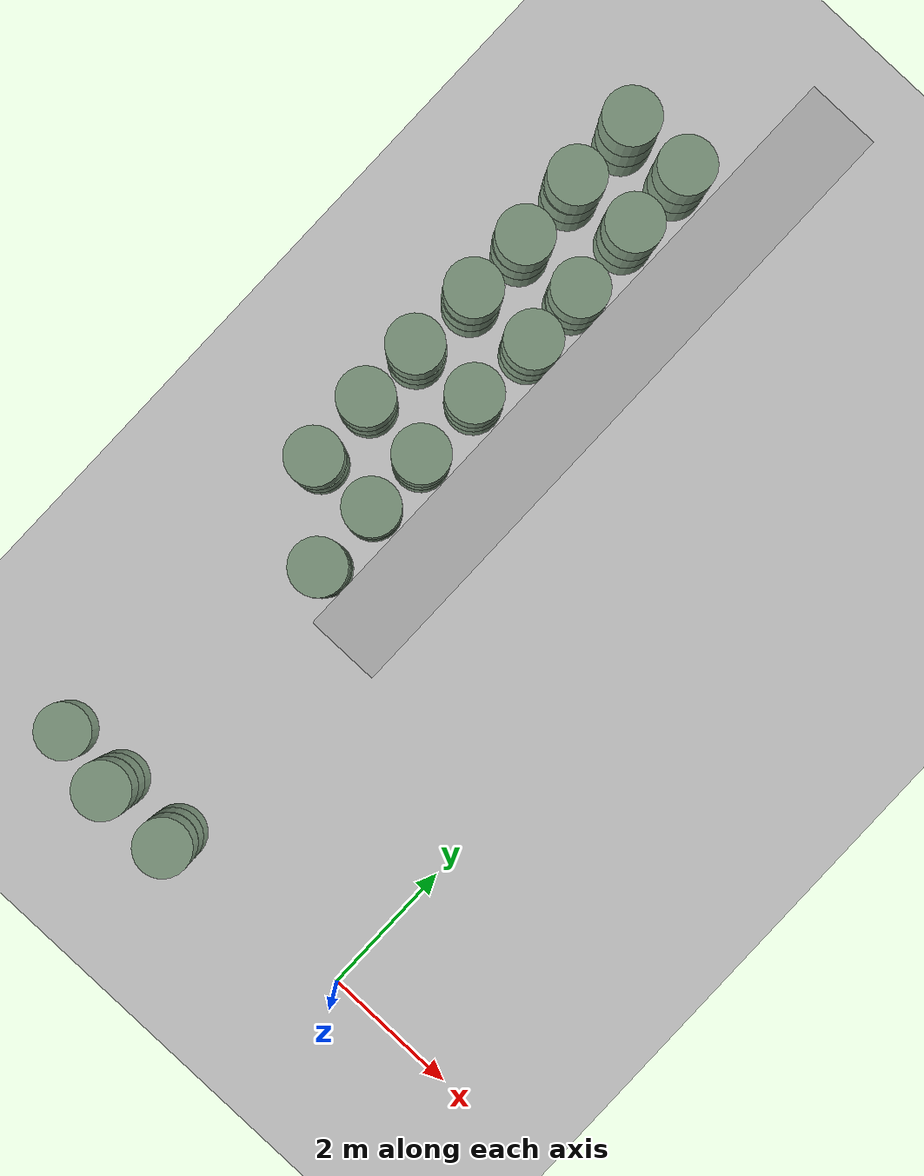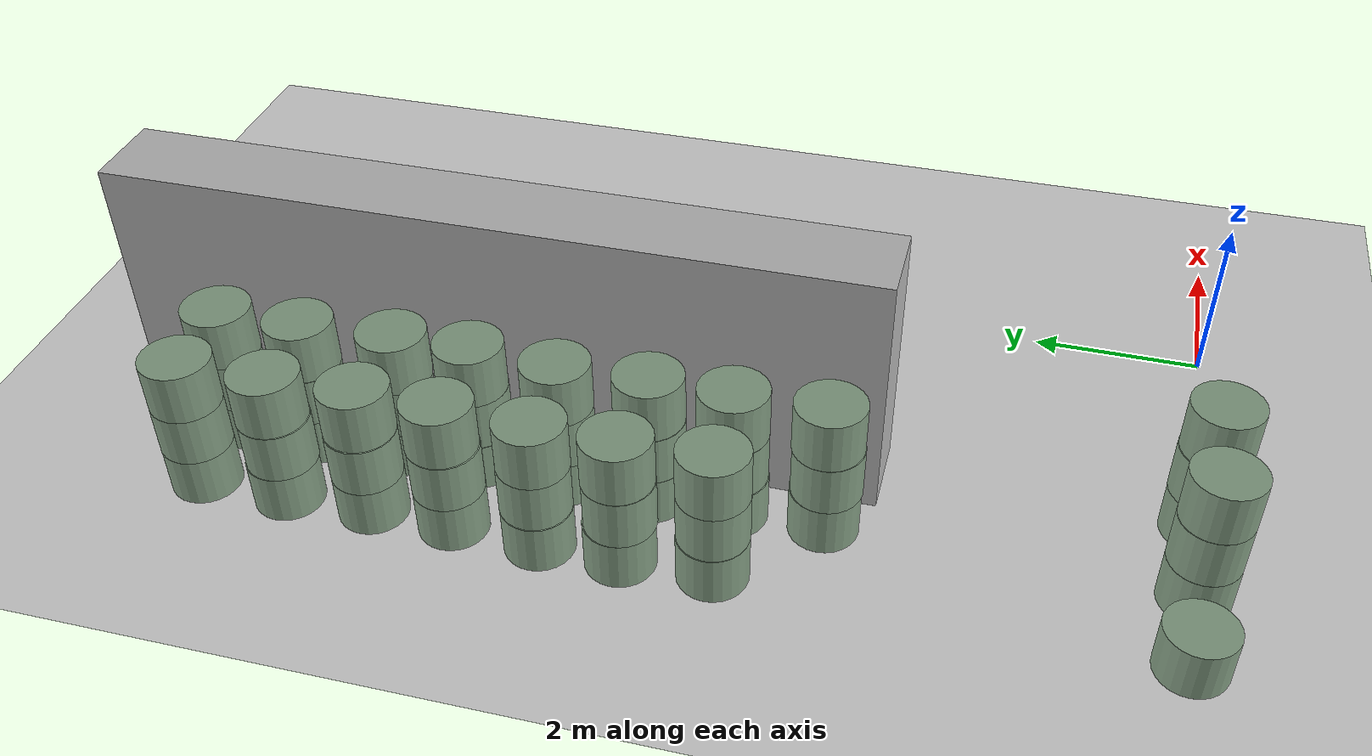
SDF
<sdf version="1.6">
 <world name="default">
  <include><uri>model://ground_plane</uri></include>
  <model name="wall_3">
   <pose>-3.0 8.0 1.5 0 -0 0</pose>
   <static>True</static>
   <link name="link">
    <inertial>
     <mass>100</mass>
     <inertia>
      <ixx>0.166667</ixx>
      <ixy>0</ixy>
      <ixz>0</ixz>
      <iyy>0.166667</iyy>
      <iyz>0</iyz>
      <izz>0.166667</izz>
     </inertia>
    </inertial>
    <collision name="collision"><geometry><box><size>1.0 9.0 3.0</size></box></geometry></collision>
    <visual name="visual">
     <geometry><box><size>1.0 9.0 3.0</size></box></geometry>
     <material><ambient>0.7 0.7 0.7 1</ambient><diffuse>0.7 0.7 0.7 1</diffuse></material>
    </visual>
   </link>
  </model>
  <model name="unit_cylinder_69">
   <pose>-5.03782356182 0.0265720674169 0.3 0 -0 0</pose>
   <static>True</static>
   <link name="link">
    <inertial>
     <mass>100</mass>
     <inertia><ixx>0.145833</ixx><ixy>0</ixy><ixz>0</ixz><iyy>0.145833</iyy><iyz>0</iyz><izz>0.125</izz></inertia>
    </inertial>
    <collision name="collision">
     <geometry><cylinder><radius>0.4</radius><length>0.6</length></cylinder></geometry>
     <max_contacts>100</max_contacts>
    </collision>
    <visual name="visual">
     <geometry><cylinder><radius>0.4</radius><length>0.6</length></cylinder></geometry>
     <material><ambient>0.5 0.6 0.5 1</ambient><diffuse>0.5 0.6 0.5 1</diffuse></material>
    </visual>
   </link>
  </model>
  <model name="unit_cylinder_72">
   <pose>-4.99059347366 5.02342648411 0.3 0 -0 0</pose>
   <static>True</static>
   <link name="link">
    <inertial>
     <mass>100</mass>
     <inertia><ixx>0.145833</ixx><ixy>0</ixy><ixz>0</ixz><iyy>0.145833</iyy><iyz>0</iyz><izz>0.125</izz></inertia>
    </inertial>
    <collision name="collision">
     <geometry><cylinder><radius>0.4</radius><length>0.6</length></cylinder></geometry>
     <max_contacts>100</max_contacts>
    </collision>
    <visual name="visual">
     <geometry><cylinder><radius>0.4</radius><length>0.6</length></cylinder></geometry>
     <material><ambient>0.5 0.6 0.5 1</ambient><diffuse>0.5 0.6 0.5 1</diffuse></material>
    </visual>
   </link>
  </model>
  <model name="unit_cylinder_73">
   <pose>-4.9800218774 5.02204412601 0.9 0 -0 0</pose>
   <static>True</static>
   <link name="link">
    <inertial>
     <mass>100</mass>
     <inertia><ixx>0.145833</ixx><ixy>0</ixy><ixz>0</ixz><iyy>0.145833</iyy><iyz>0</iyz><izz>0.125</izz></inertia>
    </inertial>
    <collision name="collision">
     <geometry><cylinder><radius>0.4</radius><length>0.6</length></cylinder></geometry>
     <max_contacts>100</max_contacts>
    </collision>
    <visual name="visual">
     <geometry><cylinder><radius>0.4</radius><length>0.6</length></cylinder></geometry>
     <material><ambient>0.5 0.6 0.5 1</ambient><diffuse>0.5 0.6 0.5 1</diffuse></material>
    </visual>
   </link>
  </model>
  <model name="unit_cylinder_74">
   <pose>-4.99481011272 5.01937620264 1.5 0 -0 0</pose>
   <static>True</static>
   <link name="link">
    <inertial>
     <mass>100</mass>
     <inertia><ixx>0.145833</ixx><ixy>0</ixy><ixz>0</ixz><iyy>0.145833</iyy><iyz>0</iyz><izz>0.125</izz></inertia>
    </inertial>
    <collision name="collision">
     <geometry><cylinder><radius>0.4</radius><length>0.6</length></cylinder></geometry>
     <max_contacts>100</max_contacts>
    </collision>
    <visual name="visual">
     <geometry><cylinder><radius>0.4</radius><length>0.6</length></cylinder></geometry>
     <material><ambient>0.5 0.6 0.5 1</ambient><diffuse>0.5 0.6 0.5 1</diffuse></material>
    </visual>
   </link>
  </model>
  <model name="unit_cylinder_75">
   <pose>-5.03156169588 6.04129613353 0.3 0 -0 0</pose>
   <static>True</static>
   <link name="link">
    <inertial>
     <mass>100</mass>
     <inertia><ixx>0.145833</ixx><ixy>0</ixy><ixz>0</ixz><iyy>0.145833</iyy><iyz>0</iyz><izz>0.125</izz></inertia>
    </inertial>
    <collision name="collision">
     <geometry><cylinder><radius>0.4</radius><length>0.6</length></cylinder></geometry>
     <max_contacts>100</max_contacts>
    </collision>
    <visual name="visual">
     <geometry><cylinder><radius>0.4</radius><length>0.6</length></cylinder></geometry>
     <material><ambient>0.5 0.6 0.5 1</ambient><diffuse>0.5 0.6 0.5 1</diffuse></material>
    </visual>
   </link>
  </model>
  <model name="unit_cylinder_76">
   <pose>-5.02912114826 6.02648568183 0.9 0 -0 0</pose>
   <static>True</static>
   <link name="link">
    <inertial>
     <mass>100</mass>
     <inertia><ixx>0.145833</ixx><ixy>0</ixy><ixz>0</ixz><iyy>0.145833</iyy><iyz>0</iyz><izz>0.125</izz></inertia>
    </inertial>
    <collision name="collision">
     <geometry><cylinder><radius>0.4</radius><length>0.6</length></cylinder></geometry>
     <max_contacts>100</max_contacts>
    </collision>
    <visual name="visual">
     <geometry><cylinder><radius>0.4</radius><length>0.6</length></cylinder></geometry>
     <material><ambient>0.5 0.6 0.5 1</ambient><diffuse>0.5 0.6 0.5 1</diffuse></material>
    </visual>
   </link>
  </model>
  <model name="unit_cylinder_77">
   <pose>-5.02596478025 6.0350380343 1.5 0 -0 0</pose>
   <static>True</static>
   <link name="link">
    <inertial>
     <mass>100</mass>
     <inertia><ixx>0.145833</ixx><ixy>0</ixy><ixz>0</ixz><iyy>0.145833</iyy><iyz>0</iyz><izz>0.125</izz></inertia>
    </inertial>
    <collision name="collision">
     <geometry><cylinder><radius>0.4</radius><length>0.6</length></cylinder></geometry>
     <max_contacts>100</max_contacts>
    </collision>
    <visual name="visual">
     <geometry><cylinder><radius>0.4</radius><length>0.6</length></cylinder></geometry>
     <material><ambient>0.5 0.6 0.5 1</ambient><diffuse>0.5 0.6 0.5 1</diffuse></material>
    </visual>
   </link>
  </model>
  <model name="unit_cylinder_78">
   <pose>-5.02283132991 6.96701352956 0.3 0 -0 0</pose>
   <static>True</static>
   <link name="link">
    <inertial>
     <mass>100</mass>
     <inertia><ixx>0.145833</ixx><ixy>0</ixy><ixz>0</ixz><iyy>0.145833</iyy><iyz>0</iyz><izz>0.125</izz></inertia>
    </inertial>
    <collision name="collision">
     <geometry><cylinder><radius>0.4</radius><length>0.6</length></cylinder></geometry>
     <max_contacts>100</max_contacts>
    </collision>
    <visual name="visual">
     <geometry><cylinder><radius>0.4</radius><length>0.6</length></cylinder></geometry>
     <material><ambient>0.5 0.6 0.5 1</ambient><diffuse>0.5 0.6 0.5 1</diffuse></material>
    </visual>
   </link>
  </model>
  <model name="unit_cylinder_79">
   <pose>-5.01076531523 6.97574725517 0.9 0 -0 0</pose>
   <static>True</static>
   <link name="link">
    <inertial>
     <mass>100</mass>
     <inertia><ixx>0.145833</ixx><ixy>0</ixy><ixz>0</ixz><iyy>0.145833</iyy><iyz>0</iyz><izz>0.125</izz></inertia>
    </inertial>
    <collision name="collision">
     <geometry><cylinder><radius>0.4</radius><length>0.6</length></cylinder></geometry>
     <max_contacts>100</max_contacts>
    </collision>
    <visual name="visual">
     <geometry><cylinder><radius>0.4</radius><length>0.6</length></cylinder></geometry>
     <material><ambient>0.5 0.6 0.5 1</ambient><diffuse>0.5 0.6 0.5 1</diffuse></material>
    </visual>
   </link>
  </model>
  <model name="unit_cylinder_80">
   <pose>-5.02451614811 6.96372885897 1.5 0 -0 0</pose>
   <static>True</static>
   <link name="link">
    <inertial>
     <mass>100</mass>
     <inertia><ixx>0.145833</ixx><ixy>0</ixy><ixz>0</ixz><iyy>0.145833</iyy><iyz>0</iyz><izz>0.125</izz></inertia>
    </inertial>
    <collision name="collision">
     <geometry><cylinder><radius>0.4</radius><length>0.6</length></cylinder></geometry>
     <max_contacts>100</max_contacts>
    </collision>
    <visual name="visual">
     <geometry><cylinder><radius>0.4</radius><length>0.6</length></cylinder></geometry>
     <material><ambient>0.5 0.6 0.5 1</ambient><diffuse>0.5 0.6 0.5 1</diffuse></material>
    </visual>
   </link>
  </model>
  <model name="unit_cylinder_81">
   <pose>-4.97088629709 7.99265066185 0.3 0 -0 0</pose>
   <static>True</static>
   <link name="link">
    <inertial>
     <mass>100</mass>
     <inertia><ixx>0.145833</ixx><ixy>0</ixy><ixz>0</ixz><iyy>0.145833</iyy><iyz>0</iyz><izz>0.125</izz></inertia>
    </inertial>
    <collision name="collision">
     <geometry><cylinder><radius>0.4</radius><length>0.6</length></cylinder></geometry>
     <max_contacts>100</max_contacts>
    </collision>
    <visual name="visual">
     <geometry><cylinder><radius>0.4</radius><length>0.6</length></cylinder></geometry>
     <material><ambient>0.5 0.6 0.5 1</ambient><diffuse>0.5 0.6 0.5 1</diffuse></material>
    </visual>
   </link>
  </model>
  <model name="unit_cylinder_82">
   <pose>-4.9767159432 7.99118023521 0.9 0 -0 0</pose>
   <static>True</static>
   <link name="link">
    <inertial>
     <mass>100</mass>
     <inertia><ixx>0.145833</ixx><ixy>0</ixy><ixz>0</ixz><iyy>0.145833</iyy><iyz>0</iyz><izz>0.125</izz></inertia>
    </inertial>
    <collision name="collision">
     <geometry><cylinder><radius>0.4</radius><length>0.6</length></cylinder></geometry>
     <max_contacts>100</max_contacts>
    </collision>
    <visual name="visual">
     <geometry><cylinder><radius>0.4</radius><length>0.6</length></cylinder></geometry>
     <material><ambient>0.5 0.6 0.5 1</ambient><diffuse>0.5 0.6 0.5 1</diffuse></material>
    </visual>
   </link>
  </model>
  <model name="unit_cylinder_83">
   <pose>-4.96775309749 8.00660761377 1.5 0 -0 0</pose>
   <static>True</static>
   <link name="link">
    <inertial>
     <mass>100</mass>
     <inertia><ixx>0.145833</ixx><ixy>0</ixy><ixz>0</ixz><iyy>0.145833</iyy><iyz>0</iyz><izz>0.125</izz></inertia>
    </inertial>
    <collision name="collision">
     <geometry><cylinder><radius>0.4</radius><length>0.6</length></cylinder></geometry>
     <max_contacts>100</max_contacts>
    </collision>
    <visual name="visual">
     <geometry><cylinder><radius>0.4</radius><length>0.6</length></cylinder></geometry>
     <material><ambient>0.5 0.6 0.5 1</ambient><diffuse>0.5 0.6 0.5 1</diffuse></material>
    </visual>
   </link>
  </model>
  <model name="unit_cylinder_84">
   <pose>-4.95965549614 8.95563117918 0.3 0 -0 0</pose>
   <static>True</static>
   <link name="link">
    <inertial>
     <mass>100</mass>
     <inertia><ixx>0.145833</ixx><ixy>0</ixy><ixz>0</ixz><iyy>0.145833</iyy><iyz>0</iyz><izz>0.125</izz></inertia>
    </inertial>
    <collision name="collision">
     <geometry><cylinder><radius>0.4</radius><length>0.6</length></cylinder></geometry>
     <max_contacts>100</max_contacts>
    </collision>
    <visual name="visual">
     <geometry><cylinder><radius>0.4</radius><length>0.6</length></cylinder></geometry>
     <material><ambient>0.5 0.6 0.5 1</ambient><diffuse>0.5 0.6 0.5 1</diffuse></material>
    </visual>
   </link>
  </model>
  <model name="unit_cylinder_85">
   <pose>-4.9655779702 8.95316364308 0.9 0 -0 0</pose>
   <static>True</static>
   <link name="link">
    <inertial>
     <mass>100</mass>
     <inertia><ixx>0.145833</ixx><ixy>0</ixy><ixz>0</ixz><iyy>0.145833</iyy><iyz>0</iyz><izz>0.125</izz></inertia>
    </inertial>
    <collision name="collision">
     <geometry><cylinder><radius>0.4</radius><length>0.6</length></cylinder></geometry>
     <max_contacts>100</max_contacts>
    </collision>
    <visual name="visual">
     <geometry><cylinder><radius>0.4</radius><length>0.6</length></cylinder></geometry>
     <material><ambient>0.5 0.6 0.5 1</ambient><diffuse>0.5 0.6 0.5 1</diffuse></material>
    </visual>
   </link>
  </model>
  <model name="unit_cylinder_86">
   <pose>-4.94890587693 8.95917958067 1.5 0 -0 0</pose>
   <static>True</static>
   <link name="link">
    <inertial>
     <mass>100</mass>
     <inertia><ixx>0.145833</ixx><ixy>0</ixy><ixz>0</ixz><iyy>0.145833</iyy><iyz>0</iyz><izz>0.125</izz></inertia>
    </inertial>
    <collision name="collision">
     <geometry><cylinder><radius>0.4</radius><length>0.6</length></cylinder></geometry>
     <max_contacts>100</max_contacts>
    </collision>
    <visual name="visual">
     <geometry><cylinder><radius>0.4</radius><length>0.6</length></cylinder></geometry>
     <material><ambient>0.5 0.6 0.5 1</ambient><diffuse>0.5 0.6 0.5 1</diffuse></material>
    </visual>
   </link>
  </model>
  <model name="unit_cylinder_87">
   <pose>-4.99435192944 9.968948391 0.3 0 -0 0</pose>
   <static>True</static>
   <link name="link">
    <inertial>
     <mass>100</mass>
     <inertia><ixx>0.145833</ixx><ixy>0</ixy><ixz>0</ixz><iyy>0.145833</iyy><iyz>0</iyz><izz>0.125</izz></inertia>
    </inertial>
    <collision name="collision">
     <geometry><cylinder><radius>0.4</radius><length>0.6</length></cylinder></geometry>
     <max_contacts>100</max_contacts>
    </collision>
    <visual name="visual">
     <geometry><cylinder><radius>0.4</radius><length>0.6</length></cylinder></geometry>
     <material><ambient>0.5 0.6 0.5 1</ambient><diffuse>0.5 0.6 0.5 1</diffuse></material>
    </visual>
   </link>
  </model>
  <model name="unit_cylinder_88">
   <pose>-4.99159879973 9.95883391727 0.9 0 -0 0</pose>
   <static>True</static>
   <link name="link">
    <inertial>
     <mass>100</mass>
     <inertia><ixx>0.145833</ixx><ixy>0</ixy><ixz>0</ixz><iyy>0.145833</iyy><iyz>0</iyz><izz>0.125</izz></inertia>
    </inertial>
    <collision name="collision">
     <geometry><cylinder><radius>0.4</radius><length>0.6</length></cylinder></geometry>
     <max_contacts>100</max_contacts>
    </collision>
    <visual name="visual">
     <geometry><cylinder><radius>0.4</radius><length>0.6</length></cylinder></geometry>
     <material><ambient>0.5 0.6 0.5 1</ambient><diffuse>0.5 0.6 0.5 1</diffuse></material>
    </visual>
   </link>
  </model>
  <model name="unit_cylinder_89">
   <pose>-4.98437458421 9.9741676871 1.5 0 -0 0</pose>
   <static>True</static>
   <link name="link">
    <inertial>
     <mass>100</mass>
     <inertia><ixx>0.145833</ixx><ixy>0</ixy><ixz>0</ixz><iyy>0.145833</iyy><iyz>0</iyz><izz>0.125</izz></inertia>
    </inertial>
    <collision name="collision">
     <geometry><cylinder><radius>0.4</radius><length>0.6</length></cylinder></geometry>
     <max_contacts>100</max_contacts>
    </collision>
    <visual name="visual">
     <geometry><cylinder><radius>0.4</radius><length>0.6</length></cylinder></geometry>
     <material><ambient>0.5 0.6 0.5 1</ambient><diffuse>0.5 0.6 0.5 1</diffuse></material>
    </visual>
   </link>
  </model>
  <model name="unit_cylinder_90">
   <pose>-4.97650855605 11.018045595 0.3 0 -0 0</pose>
   <static>True</static>
   <link name="link">
    <inertial>
     <mass>100</mass>
     <inertia><ixx>0.145833</ixx><ixy>0</ixy><ixz>0</ixz><iyy>0.145833</iyy><iyz>0</iyz><izz>0.125</izz></inertia>
    </inertial>
    <collision name="collision">
     <geometry><cylinder><radius>0.4</radius><length>0.6</length></cylinder></geometry>
     <max_contacts>100</max_contacts>
    </collision>
    <visual name="visual">
     <geometry><cylinder><radius>0.4</radius><length>0.6</length></cylinder></geometry>
     <material><ambient>0.5 0.6 0.5 1</ambient><diffuse>0.5 0.6 0.5 1</diffuse></material>
    </visual>
   </link>
  </model>
  <model name="unit_cylinder_91">
   <pose>-4.98168499605 11.0168143569 0.9 0 -0 0</pose>
   <static>True</static>
   <link name="link">
    <inertial>
     <mass>100</mass>
     <inertia><ixx>0.145833</ixx><ixy>0</ixy><ixz>0</ixz><iyy>0.145833</iyy><iyz>0</iyz><izz>0.125</izz></inertia>
    </inertial>
    <collision name="collision">
     <geometry><cylinder><radius>0.4</radius><length>0.6</length></cylinder></geometry>
     <max_contacts>100</max_contacts>
    </collision>
    <visual name="visual">
     <geometry><cylinder><radius>0.4</radius><length>0.6</length></cylinder></geometry>
     <material><ambient>0.5 0.6 0.5 1</ambient><diffuse>0.5 0.6 0.5 1</diffuse></material>
    </visual>
   </link>
  </model>
  <model name="unit_cylinder_92">
   <pose>-4.98700613318 11.0100691223 1.5 0 -0 0</pose>
   <static>True</static>
   <link name="link">
    <inertial>
     <mass>100</mass>
     <inertia><ixx>0.145833</ixx><ixy>0</ixy><ixz>0</ixz><iyy>0.145833</iyy><iyz>0</iyz><izz>0.125</izz></inertia>
    </inertial>
    <collision name="collision">
     <geometry><cylinder><radius>0.4</radius><length>0.6</length></cylinder></geometry>
     <max_contacts>100</max_contacts>
    </collision>
    <visual name="visual">
     <geometry><cylinder><radius>0.4</radius><length>0.6</length></cylinder></geometry>
     <material><ambient>0.5 0.6 0.5 1</ambient><diffuse>0.5 0.6 0.5 1</diffuse></material>
    </visual>
   </link>
  </model>
  <model name="unit_cylinder_105">
   <pose>-4.05463239943 0.0140608398514 0.3 0 -0 0</pose>
   <static>True</static>
   <link name="link">
    <inertial>
     <mass>100</mass>
     <inertia><ixx>0.145833</ixx><ixy>0</ixy><ixz>0</ixz><iyy>0.145833</iyy><iyz>0</iyz><izz>0.125</izz></inertia>
    </inertial>
    <collision name="collision">
     <geometry><cylinder><radius>0.4</radius><length>0.6</length></cylinder></geometry>
     <max_contacts>100</max_contacts>
    </collision>
    <visual name="visual">
     <geometry><cylinder><radius>0.4</radius><length>0.6</length></cylinder></geometry>
     <material><ambient>0.5 0.6 0.5 1</ambient><diffuse>0.5 0.6 0.5 1</diffuse></material>
    </visual>
   </link>
  </model>
  <model name="unit_cylinder_106">
   <pose>-4.05286910005 0.0142012012898 0.9 0 -0 0</pose>
   <static>True</static>
   <link name="link">
    <inertial>
     <mass>100</mass>
     <inertia><ixx>0.145833</ixx><ixy>0</ixy><ixz>0</ixz><iyy>0.145833</iyy><iyz>0</iyz><izz>0.125</izz></inertia>
    </inertial>
    <collision name="collision">
     <geometry><cylinder><radius>0.4</radius><length>0.6</length></cylinder></geometry>
     <max_contacts>100</max_contacts>
    </collision>
    <visual name="visual">
     <geometry><cylinder><radius>0.4</radius><length>0.6</length></cylinder></geometry>
     <material><ambient>0.5 0.6 0.5 1</ambient><diffuse>0.5 0.6 0.5 1</diffuse></material>
    </visual>
   </link>
  </model>
  <model name="unit_cylinder_107">
   <pose>-4.04928948197 0.0111268213651 1.5 0 -0 0</pose>
   <static>True</static>
   <link name="link">
    <inertial>
     <mass>100</mass>
     <inertia><ixx>0.145833</ixx><ixy>0</ixy><ixz>0</ixz><iyy>0.145833</iyy><iyz>0</iyz><izz>0.125</izz></inertia>
    </inertial>
    <collision name="collision">
     <geometry><cylinder><radius>0.4</radius><length>0.6</length></cylinder></geometry>
     <max_contacts>100</max_contacts>
    </collision>
    <visual name="visual">
     <geometry><cylinder><radius>0.4</radius><length>0.6</length></cylinder></geometry>
     <material><ambient>0.5 0.6 0.5 1</ambient><diffuse>0.5 0.6 0.5 1</diffuse></material>
    </visual>
   </link>
  </model>
  <model name="unit_cylinder_108">
   <pose>-3.98122816571 4.01408271446 0.3 0 -0 0</pose>
   <static>True</static>
   <link name="link">
    <inertial>
     <mass>100</mass>
     <inertia><ixx>0.145833</ixx><ixy>0</ixy><ixz>0</ixz><iyy>0.145833</iyy><iyz>0</iyz><izz>0.125</izz></inertia>
    </inertial>
    <collision name="collision">
     <geometry><cylinder><radius>0.4</radius><length>0.6</length></cylinder></geometry>
     <max_contacts>100</max_contacts>
    </collision>
    <visual name="visual">
     <geometry><cylinder><radius>0.4</radius><length>0.6</length></cylinder></geometry>
     <material><ambient>0.5 0.6 0.5 1</ambient><diffuse>0.5 0.6 0.5 1</diffuse></material>
    </visual>
   </link>
  </model>
  <model name="unit_cylinder_109">
   <pose>-3.9854370973 4.0020594891 0.9 0 -0 0</pose>
   <static>True</static>
   <link name="link">
    <inertial>
     <mass>100</mass>
     <inertia><ixx>0.145833</ixx><ixy>0</ixy><ixz>0</ixz><iyy>0.145833</iyy><iyz>0</iyz><izz>0.125</izz></inertia>
    </inertial>
    <collision name="collision">
     <geometry><cylinder><radius>0.4</radius><length>0.6</length></cylinder></geometry>
     <max_contacts>100</max_contacts>
    </collision>
    <visual name="visual">
     <geometry><cylinder><radius>0.4</radius><length>0.6</length></cylinder></geometry>
     <material><ambient>0.5 0.6 0.5 1</ambient><diffuse>0.5 0.6 0.5 1</diffuse></material>
    </visual>
   </link>
  </model>
  <model name="unit_cylinder_110">
   <pose>-3.98191122012 4.0122128184 1.5 0 -0 0</pose>
   <static>True</static>
   <link name="link">
    <inertial>
     <mass>100</mass>
     <inertia><ixx>0.145833</ixx><ixy>0</ixy><ixz>0</ixz><iyy>0.145833</iyy><iyz>0</iyz><izz>0.125</izz></inertia>
    </inertial>
    <collision name="collision">
     <geometry><cylinder><radius>0.4</radius><length>0.6</length></cylinder></geometry>
     <max_contacts>100</max_contacts>
    </collision>
    <visual name="visual">
     <geometry><cylinder><radius>0.4</radius><length>0.6</length></cylinder></geometry>
     <material><ambient>0.5 0.6 0.5 1</ambient><diffuse>0.5 0.6 0.5 1</diffuse></material>
    </visual>
   </link>
  </model>
  <model name="unit_cylinder_111">
   <pose>-4.01932369581 5.03958765756 0.3 0 -0 0</pose>
   <static>True</static>
   <link name="link">
    <inertial>
     <mass>100</mass>
     <inertia><ixx>0.145833</ixx><ixy>0</ixy><ixz>0</ixz><iyy>0.145833</iyy><iyz>0</iyz><izz>0.125</izz></inertia>
    </inertial>
    <collision name="collision">
     <geometry><cylinder><radius>0.4</radius><length>0.6</length></cylinder></geometry>
     <max_contacts>100</max_contacts>
    </collision>
    <visual name="visual">
     <geometry><cylinder><radius>0.4</radius><length>0.6</length></cylinder></geometry>
     <material><ambient>0.5 0.6 0.5 1</ambient><diffuse>0.5 0.6 0.5 1</diffuse></material>
    </visual>
   </link>
  </model>
  <model name="unit_cylinder_112">
   <pose>-4.01382522465 5.04996529168 0.9 0 -0 0</pose>
   <static>True</static>
   <link name="link">
    <inertial>
     <mass>100</mass>
     <inertia><ixx>0.145833</ixx><ixy>0</ixy><ixz>0</ixz><iyy>0.145833</iyy><iyz>0</iyz><izz>0.125</izz></inertia>
    </inertial>
    <collision name="collision">
     <geometry><cylinder><radius>0.4</radius><length>0.6</length></cylinder></geometry>
     <max_contacts>100</max_contacts>
    </collision>
    <visual name="visual">
     <geometry><cylinder><radius>0.4</radius><length>0.6</length></cylinder></geometry>
     <material><ambient>0.5 0.6 0.5 1</ambient><diffuse>0.5 0.6 0.5 1</diffuse></material>
    </visual>
   </link>
  </model>
  <model name="unit_cylinder_113">
   <pose>-4.0051152126 5.04954770741 1.5 0 -0 0</pose>
   <static>True</static>
   <link name="link">
    <inertial>
     <mass>100</mass>
     <inertia><ixx>0.145833</ixx><ixy>0</ixy><ixz>0</ixz><iyy>0.145833</iyy><iyz>0</iyz><izz>0.125</izz></inertia>
    </inertial>
    <collision name="collision">
     <geometry><cylinder><radius>0.4</radius><length>0.6</length></cylinder></geometry>
     <max_contacts>100</max_contacts>
    </collision>
    <visual name="visual">
     <geometry><cylinder><radius>0.4</radius><length>0.6</length></cylinder></geometry>
     <material><ambient>0.5 0.6 0.5 1</ambient><diffuse>0.5 0.6 0.5 1</diffuse></material>
    </visual>
   </link>
  </model>
  <model name="unit_cylinder_114">
   <pose>-4.0076458467 5.97584051766 0.3 0 -0 0</pose>
   <static>True</static>
   <link name="link">
    <inertial>
     <mass>100</mass>
     <inertia><ixx>0.145833</ixx><ixy>0</ixy><ixz>0</ixz><iyy>0.145833</iyy><iyz>0</iyz><izz>0.125</izz></inertia>
    </inertial>
    <collision name="collision">
     <geometry><cylinder><radius>0.4</radius><length>0.6</length></cylinder></geometry>
     <max_contacts>100</max_contacts>
    </collision>
    <visual name="visual">
     <geometry><cylinder><radius>0.4</radius><length>0.6</length></cylinder></geometry>
     <material><ambient>0.5 0.6 0.5 1</ambient><diffuse>0.5 0.6 0.5 1</diffuse></material>
    </visual>
   </link>
  </model>
  <model name="unit_cylinder_115">
   <pose>-4.00690516477 5.98192548883 0.9 0 -0 0</pose>
   <static>True</static>
   <link name="link">
    <inertial>
     <mass>100</mass>
     <inertia><ixx>0.145833</ixx><ixy>0</ixy><ixz>0</ixz><iyy>0.145833</iyy><iyz>0</iyz><izz>0.125</izz></inertia>
    </inertial>
    <collision name="collision">
     <geometry><cylinder><radius>0.4</radius><length>0.6</length></cylinder></geometry>
     <max_contacts>100</max_contacts>
    </collision>
    <visual name="visual">
     <geometry><cylinder><radius>0.4</radius><length>0.6</length></cylinder></geometry>
     <material><ambient>0.5 0.6 0.5 1</ambient><diffuse>0.5 0.6 0.5 1</diffuse></material>
    </visual>
   </link>
  </model>
  <model name="unit_cylinder_116">
   <pose>-4.00010109592 5.98672345499 1.5 0 -0 0</pose>
   <static>True</static>
   <link name="link">
    <inertial>
     <mass>100</mass>
     <inertia><ixx>0.145833</ixx><ixy>0</ixy><ixz>0</ixz><iyy>0.145833</iyy><iyz>0</iyz><izz>0.125</izz></inertia>
    </inertial>
    <collision name="collision">
     <geometry><cylinder><radius>0.4</radius><length>0.6</length></cylinder></geometry>
     <max_contacts>100</max_contacts>
    </collision>
    <visual name="visual">
     <geometry><cylinder><radius>0.4</radius><length>0.6</length></cylinder></geometry>
     <material><ambient>0.5 0.6 0.5 1</ambient><diffuse>0.5 0.6 0.5 1</diffuse></material>
    </visual>
   </link>
  </model>
  <model name="unit_cylinder_117">
   <pose>-4.02495928011 7.03717414021 0.3 0 -0 0</pose>
   <static>True</static>
   <link name="link">
    <inertial>
     <mass>100</mass>
     <inertia><ixx>0.145833</ixx><ixy>0</ixy><ixz>0</ixz><iyy>0.145833</iyy><iyz>0</iyz><izz>0.125</izz></inertia>
    </inertial>
    <collision name="collision">
     <geometry><cylinder><radius>0.4</radius><length>0.6</length></cylinder></geometry>
     <max_contacts>100</max_contacts>
    </collision>
    <visual name="visual">
     <geometry><cylinder><radius>0.4</radius><length>0.6</length></cylinder></geometry>
     <material><ambient>0.5 0.6 0.5 1</ambient><diffuse>0.5 0.6 0.5 1</diffuse></material>
    </visual>
   </link>
  </model>
  <model name="unit_cylinder_118">
   <pose>-4.03355892156 7.02585670432 0.9 0 -0 0</pose>
   <static>True</static>
   <link name="link">
    <inertial>
     <mass>100</mass>
     <inertia><ixx>0.145833</ixx><ixy>0</ixy><ixz>0</ixz><iyy>0.145833</iyy><iyz>0</iyz><izz>0.125</izz></inertia>
    </inertial>
    <collision name="collision">
     <geometry><cylinder><radius>0.4</radius><length>0.6</length></cylinder></geometry>
     <max_contacts>100</max_contacts>
    </collision>
    <visual name="visual">
     <geometry><cylinder><radius>0.4</radius><length>0.6</length></cylinder></geometry>
     <material><ambient>0.5 0.6 0.5 1</ambient><diffuse>0.5 0.6 0.5 1</diffuse></material>
    </visual>
   </link>
  </model>
  <model name="unit_cylinder_119">
   <pose>-4.03364688154 7.02321425078 1.5 0 -0 0</pose>
   <static>True</static>
   <link name="link">
    <inertial>
     <mass>100</mass>
     <inertia><ixx>0.145833</ixx><ixy>0</ixy><ixz>0</ixz><iyy>0.145833</iyy><iyz>0</iyz><izz>0.125</izz></inertia>
    </inertial>
    <collision name="collision">
     <geometry><cylinder><radius>0.4</radius><length>0.6</length></cylinder></geometry>
     <max_contacts>100</max_contacts>
    </collision>
    <visual name="visual">
     <geometry><cylinder><radius>0.4</radius><length>0.6</length></cylinder></geometry>
     <material><ambient>0.5 0.6 0.5 1</ambient><diffuse>0.5 0.6 0.5 1</diffuse></material>
    </visual>
   </link>
  </model>
  <model name="unit_cylinder_120">
   <pose>-3.95972594986 8.05109339817 0.3 0 -0 0</pose>
   <static>True</static>
   <link name="link">
    <inertial>
     <mass>100</mass>
     <inertia><ixx>0.145833</ixx><ixy>0</ixy><ixz>0</ixz><iyy>0.145833</iyy><iyz>0</iyz><izz>0.125</izz></inertia>
    </inertial>
    <collision name="collision">
     <geometry><cylinder><radius>0.4</radius><length>0.6</length></cylinder></geometry>
     <max_contacts>100</max_contacts>
    </collision>
    <visual name="visual">
     <geometry><cylinder><radius>0.4</radius><length>0.6</length></cylinder></geometry>
     <material><ambient>0.5 0.6 0.5 1</ambient><diffuse>0.5 0.6 0.5 1</diffuse></material>
    </visual>
   </link>
  </model>
  <model name="unit_cylinder_121">
   <pose>-3.94618090588 8.04570546492 0.9 0 -0 0</pose>
   <static>True</static>
   <link name="link">
    <inertial>
     <mass>100</mass>
     <inertia><ixx>0.145833</ixx><ixy>0</ixy><ixz>0</ixz><iyy>0.145833</iyy><iyz>0</iyz><izz>0.125</izz></inertia>
    </inertial>
    <collision name="collision">
     <geometry><cylinder><radius>0.4</radius><length>0.6</length></cylinder></geometry>
     <max_contacts>100</max_contacts>
    </collision>
    <visual name="visual">
     <geometry><cylinder><radius>0.4</radius><length>0.6</length></cylinder></geometry>
     <material><ambient>0.5 0.6 0.5 1</ambient><diffuse>0.5 0.6 0.5 1</diffuse></material>
    </visual>
   </link>
  </model>
  <model name="unit_cylinder_122">
   <pose>-3.95210252806 8.04938447827 1.5 0 -0 0</pose>
   <static>True</static>
   <link name="link">
    <inertial>
     <mass>100</mass>
     <inertia><ixx>0.145833</ixx><ixy>0</ixy><ixz>0</ixz><iyy>0.145833</iyy><iyz>0</iyz><izz>0.125</izz></inertia>
    </inertial>
    <collision name="collision">
     <geometry><cylinder><radius>0.4</radius><length>0.6</length></cylinder></geometry>
     <max_contacts>100</max_contacts>
    </collision>
    <visual name="visual">
     <geometry><cylinder><radius>0.4</radius><length>0.6</length></cylinder></geometry>
     <material><ambient>0.5 0.6 0.5 1</ambient><diffuse>0.5 0.6 0.5 1</diffuse></material>
    </visual>
   </link>
  </model>
  <model name="unit_cylinder_123">
   <pose>-3.9793948778 8.95965219024 0.3 0 -0 0</pose>
   <static>True</static>
   <link name="link">
    <inertial>
     <mass>100</mass>
     <inertia><ixx>0.145833</ixx><ixy>0</ixy><ixz>0</ixz><iyy>0.145833</iyy><iyz>0</iyz><izz>0.125</izz></inertia>
    </inertial>
    <collision name="collision">
     <geometry><cylinder><radius>0.4</radius><length>0.6</length></cylinder></geometry>
     <max_contacts>100</max_contacts>
    </collision>
    <visual name="visual">
     <geometry><cylinder><radius>0.4</radius><length>0.6</length></cylinder></geometry>
     <material><ambient>0.5 0.6 0.5 1</ambient><diffuse>0.5 0.6 0.5 1</diffuse></material>
    </visual>
   </link>
  </model>
  <model name="unit_cylinder_124">
   <pose>-3.96408348056 8.959614625 0.9 0 -0 0</pose>
   <static>True</static>
   <link name="link">
    <inertial>
     <mass>100</mass>
     <inertia><ixx>0.145833</ixx><ixy>0</ixy><ixz>0</ixz><iyy>0.145833</iyy><iyz>0</iyz><izz>0.125</izz></inertia>
    </inertial>
    <collision name="collision">
     <geometry><cylinder><radius>0.4</radius><length>0.6</length></cylinder></geometry>
     <max_contacts>100</max_contacts>
    </collision>
    <visual name="visual">
     <geometry><cylinder><radius>0.4</radius><length>0.6</length></cylinder></geometry>
     <material><ambient>0.5 0.6 0.5 1</ambient><diffuse>0.5 0.6 0.5 1</diffuse></material>
    </visual>
   </link>
  </model>
  <model name="unit_cylinder_125">
   <pose>-3.96579306062 8.94755255022 1.5 0 -0 0</pose>
   <static>True</static>
   <link name="link">
    <inertial>
     <mass>100</mass>
     <inertia><ixx>0.145833</ixx><ixy>0</ixy><ixz>0</ixz><iyy>0.145833</iyy><iyz>0</iyz><izz>0.125</izz></inertia>
    </inertial>
    <collision name="collision">
     <geometry><cylinder><radius>0.4</radius><length>0.6</length></cylinder></geometry>
     <max_contacts>100</max_contacts>
    </collision>
    <visual name="visual">
     <geometry><cylinder><radius>0.4</radius><length>0.6</length></cylinder></geometry>
     <material><ambient>0.5 0.6 0.5 1</ambient><diffuse>0.5 0.6 0.5 1</diffuse></material>
    </visual>
   </link>
  </model>
  <model name="unit_cylinder_126">
   <pose>-4.03691974694 10.0428891245 0.3 0 -0 0</pose>
   <static>True</static>
   <link name="link">
    <inertial>
     <mass>100</mass>
     <inertia><ixx>0.145833</ixx><ixy>0</ixy><ixz>0</ixz><iyy>0.145833</iyy><iyz>0</iyz><izz>0.125</izz></inertia>
    </inertial>
    <collision name="collision">
     <geometry><cylinder><radius>0.4</radius><length>0.6</length></cylinder></geometry>
     <max_contacts>100</max_contacts>
    </collision>
    <visual name="visual">
     <geometry><cylinder><radius>0.4</radius><length>0.6</length></cylinder></geometry>
     <material><ambient>0.5 0.6 0.5 1</ambient><diffuse>0.5 0.6 0.5 1</diffuse></material>
    </visual>
   </link>
  </model>
  <model name="unit_cylinder_127">
   <pose>-4.03506766224 10.0365899861 0.9 0 -0 0</pose>
   <static>True</static>
   <link name="link">
    <inertial>
     <mass>100</mass>
     <inertia><ixx>0.145833</ixx><ixy>0</ixy><ixz>0</ixz><iyy>0.145833</iyy><iyz>0</iyz><izz>0.125</izz></inertia>
    </inertial>
    <collision name="collision">
     <geometry><cylinder><radius>0.4</radius><length>0.6</length></cylinder></geometry>
     <max_contacts>100</max_contacts>
    </collision>
    <visual name="visual">
     <geometry><cylinder><radius>0.4</radius><length>0.6</length></cylinder></geometry>
     <material><ambient>0.5 0.6 0.5 1</ambient><diffuse>0.5 0.6 0.5 1</diffuse></material>
    </visual>
   </link>
  </model>
  <model name="unit_cylinder_128">
   <pose>-4.02660217554 10.0380583081 1.5 0 -0 0</pose>
   <static>True</static>
   <link name="link">
    <inertial>
     <mass>100</mass>
     <inertia><ixx>0.145833</ixx><ixy>0</ixy><ixz>0</ixz><iyy>0.145833</iyy><iyz>0</iyz><izz>0.125</izz></inertia>
    </inertial>
    <collision name="collision">
     <geometry><cylinder><radius>0.4</radius><length>0.6</length></cylinder></geometry>
     <max_contacts>100</max_contacts>
    </collision>
    <visual name="visual">
     <geometry><cylinder><radius>0.4</radius><length>0.6</length></cylinder></geometry>
     <material><ambient>0.5 0.6 0.5 1</ambient><diffuse>0.5 0.6 0.5 1</diffuse></material>
    </visual>
   </link>
  </model>
  <model name="unit_cylinder_129">
   <pose>-4.03880345274 11.0503826018 0.3 0 -0 0</pose>
   <static>True</static>
   <link name="link">
    <inertial>
     <mass>100</mass>
     <inertia><ixx>0.145833</ixx><ixy>0</ixy><ixz>0</ixz><iyy>0.145833</iyy><iyz>0</iyz><izz>0.125</izz></inertia>
    </inertial>
    <collision name="collision">
     <geometry><cylinder><radius>0.4</radius><length>0.6</length></cylinder></geometry>
     <max_contacts>100</max_contacts>
    </collision>
    <visual name="visual">
     <geometry><cylinder><radius>0.4</radius><length>0.6</length></cylinder></geometry>
     <material><ambient>0.5 0.6 0.5 1</ambient><diffuse>0.5 0.6 0.5 1</diffuse></material>
    </visual>
   </link>
  </model>
  <model name="unit_cylinder_130">
   <pose>-4.04133347065 11.0378974602 0.9 0 -0 0</pose>
   <static>True</static>
   <link name="link">
    <inertial>
     <mass>100</mass>
     <inertia><ixx>0.145833</ixx><ixy>0</ixy><ixz>0</ixz><iyy>0.145833</iyy><iyz>0</iyz><izz>0.125</izz></inertia>
    </inertial>
    <collision name="collision">
     <geometry><cylinder><radius>0.4</radius><length>0.6</length></cylinder></geometry>
     <max_contacts>100</max_contacts>
    </collision>
    <visual name="visual">
     <geometry><cylinder><radius>0.4</radius><length>0.6</length></cylinder></geometry>
     <material><ambient>0.5 0.6 0.5 1</ambient><diffuse>0.5 0.6 0.5 1</diffuse></material>
    </visual>
   </link>
  </model>
  <model name="unit_cylinder_131">
   <pose>-4.0384919678 11.0350452042 1.5 0 -0 0</pose>
   <static>True</static>
   <link name="link">
    <inertial>
     <mass>100</mass>
     <inertia><ixx>0.145833</ixx><ixy>0</ixy><ixz>0</ixz><iyy>0.145833</iyy><iyz>0</iyz><izz>0.125</izz></inertia>
    </inertial>
    <collision name="collision">
     <geometry><cylinder><radius>0.4</radius><length>0.6</length></cylinder></geometry>
     <max_contacts>100</max_contacts>
    </collision>
    <visual name="visual">
     <geometry><cylinder><radius>0.4</radius><length>0.6</length></cylinder></geometry>
     <material><ambient>0.5 0.6 0.5 1</ambient><diffuse>0.5 0.6 0.5 1</diffuse></material>
    </visual>
   </link>
  </model>
  <model name="unit_cylinder_147">
   <pose>-2.97237086008 0.0110368655138 0.3 0 -0 0</pose>
   <static>True</static>
   <link name="link">
    <inertial>
     <mass>100</mass>
     <inertia><ixx>0.145833</ixx><ixy>0</ixy><ixz>0</ixz><iyy>0.145833</iyy><iyz>0</iyz><izz>0.125</izz></inertia>
    </inertial>
    <collision name="collision">
     <geometry><cylinder><radius>0.4</radius><length>0.6</length></cylinder></geometry>
     <max_contacts>100</max_contacts>
    </collision>
    <visual name="visual">
     <geometry><cylinder><radius>0.4</radius><length>0.6</length></cylinder></geometry>
     <material><ambient>0.5 0.6 0.5 1</ambient><diffuse>0.5 0.6 0.5 1</diffuse></material>
    </visual>
   </link>
  </model>
  <model name="unit_cylinder_148">
   <pose>-2.97540215887 0.0174425478792 0.9 0 -0 0</pose>
   <static>True</static>
   <link name="link">
    <inertial>
     <mass>100</mass>
     <inertia><ixx>0.145833</ixx><ixy>0</ixy><ixz>0</ixz><iyy>0.145833</iyy><iyz>0</iyz><izz>0.125</izz></inertia>
    </inertial>
    <collision name="collision">
     <geometry><cylinder><radius>0.4</radius><length>0.6</length></cylinder></geometry>
     <max_contacts>100</max_contacts>
    </collision>
    <visual name="visual">
     <geometry><cylinder><radius>0.4</radius><length>0.6</length></cylinder></geometry>
     <material><ambient>0.5 0.6 0.5 1</ambient><diffuse>0.5 0.6 0.5 1</diffuse></material>
    </visual>
   </link>
  </model>
  <model name="unit_cylinder_149">
   <pose>-2.97240442203 0.0114924639913 1.5 0 -0 0</pose>
   <static>True</static>
   <link name="link">
    <inertial>
     <mass>100</mass>
     <inertia><ixx>0.145833</ixx><ixy>0</ixy><ixz>0</ixz><iyy>0.145833</iyy><iyz>0</iyz><izz>0.125</izz></inertia>
    </inertial>
    <collision name="collision">
     <geometry><cylinder><radius>0.4</radius><length>0.6</length></cylinder></geometry>
     <max_contacts>100</max_contacts>
    </collision>
    <visual name="visual">
     <geometry><cylinder><radius>0.4</radius><length>0.6</length></cylinder></geometry>
     <material><ambient>0.5 0.6 0.5 1</ambient><diffuse>0.5 0.6 0.5 1</diffuse></material>
    </visual>
   </link>
  </model>
 </world>
</sdf>
